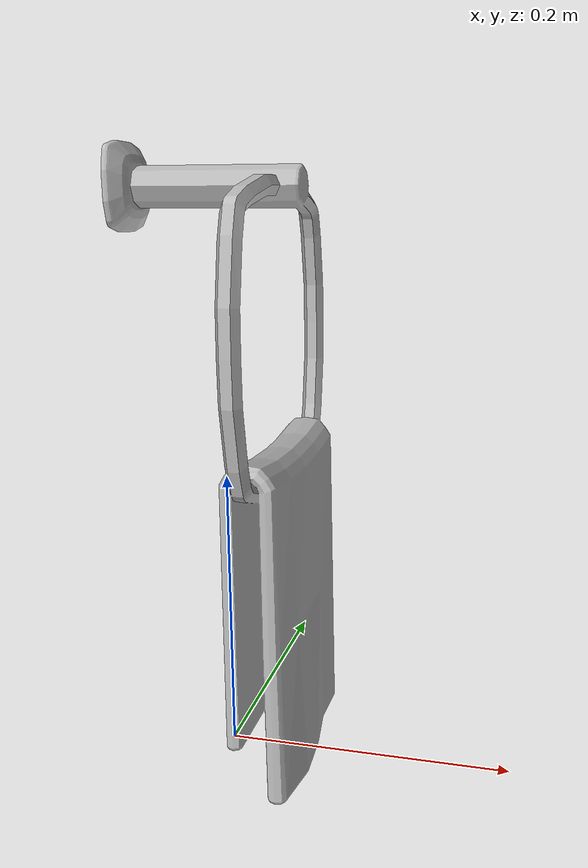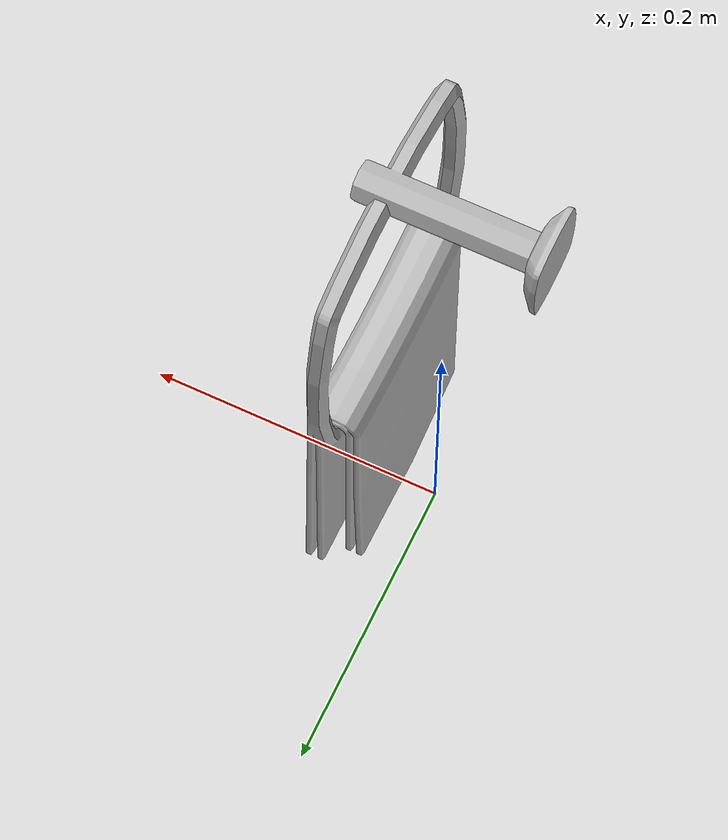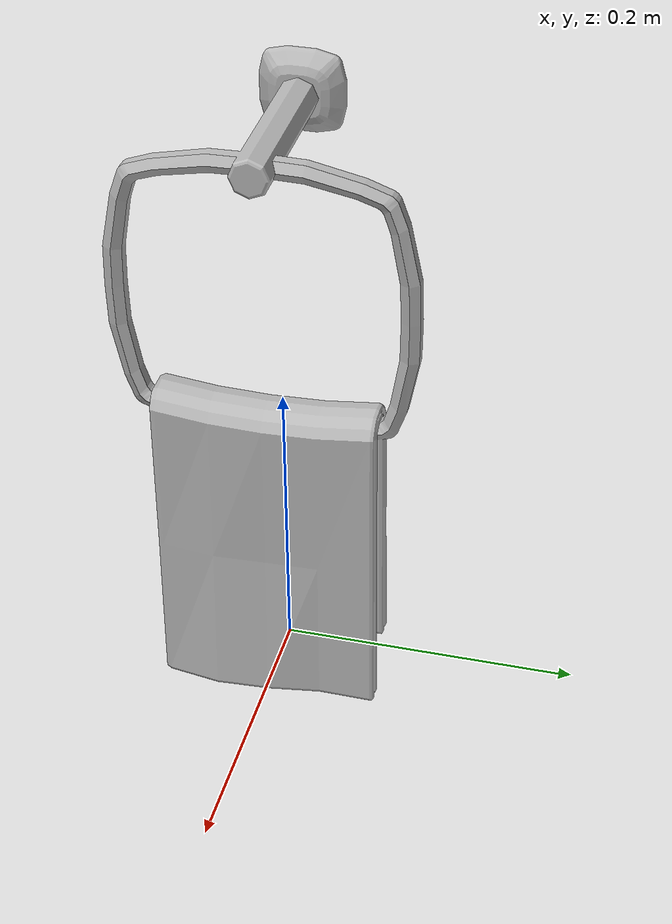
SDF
<?xml version='1.0'?>
<sdf version='1.4'>
  <model name='s__1327'>
    <pose>0 0 0 0 0 0</pose>
    <static>true</static>
    <link name='link'>
      <collision name='collision'>
        <pose>0 0 0 0 0 0</pose>
        <geometry>
          <box>
            <size>0.13 0.2 2</size>
          </box>
        </geometry>
      </collision>
      <visual name='visual'>
        <pose>0 0 0 0 0 0</pose>
        <geometry>
          <mesh><uri>model://s__1327/s__1327.dae</uri></mesh>
        </geometry>
      </visual>
    </link>
  </model>
</sdf>
